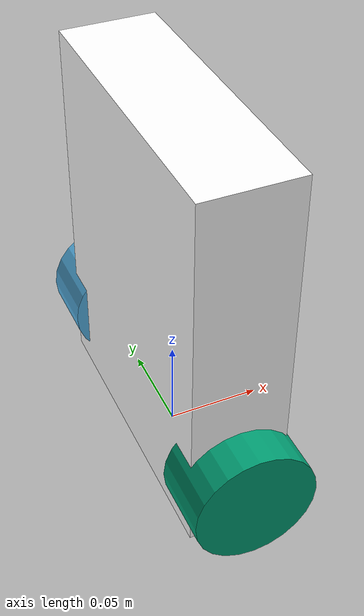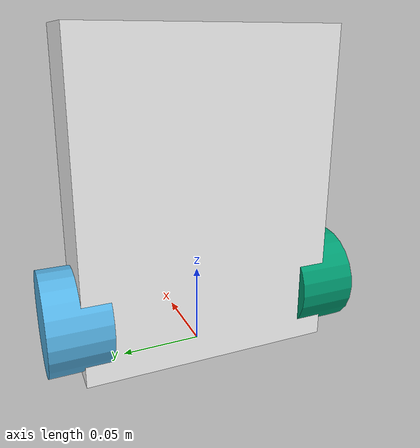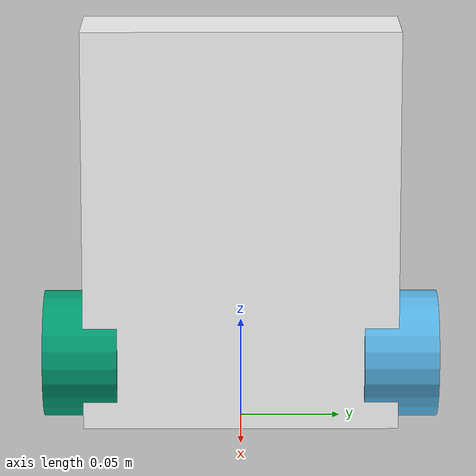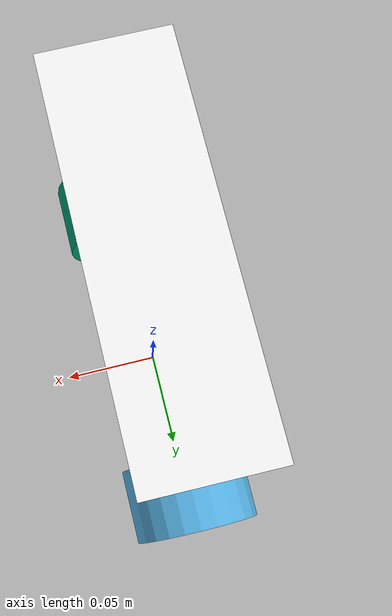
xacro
<?xml version = "1.0" ?>
<robot name = "wheeltec" xmlns:xacro ="http://ros.org/wiki/xacro" >
	<xacro:include filename="$(find turn_on_wheeltec_robot)/urdf/meshes/material.xacro" />

	<link name = "base_link">
		<visual>
			<geometry>
				<box size = "0.05 0.157 0.2"/>
			</geometry>
			<origin xyz ="0.00 0.0 0.1" rpy = "0 0 0" />
			<material name="white">
                <color rgba="1 1 1 1"/>
            </material>
		</visual>
	</link>

	<link name = "right_wheel_link">
		<inertial>
			<origin xyz = "0.0 0.0185 0" rpy = "0 0 0" />
			<mass value ="0.03770"/>
			<inertia ixx ="0.000096758" ixz = "0.0" iyy = "0.000068429" iyz = "0.0000" ixy = "0.0" izz = "0.000096758"/>
		</inertial>
		<collision>
			<geometry>
				<cylinder radius="0.0316" length ="0.037"/>
			</geometry>
			<origin rpy = "1.5708 0 0" xyz = "0 0.0150 0"/>

		</collision>
		<visual>
			<geometry>
				<cylinder radius="0.0316" length ="0.037"/>
			</geometry>

			<origin xyz="0 0 0" rpy="0 0 0" />
		</visual>
	</link>
	<joint name ="right_wheel_Joint" type = "continuous">
		<parent link = "base_link"/>
		<child link = "right_wheel_link"/>
		<origin xyz="0 0.08 0.0325" rpy="1.57 0 0"/>
		<limit effort="100000" velocity="100000"/>
        <axis xyz="0 1 0"/>
	</joint>
	<link name = "left_wheel_link">
		<inertial>
			<origin xyz = "0.0 0.0185 0" rpy = "0 0 0" />
			<mass value ="0.03770"/>
			<inertia ixx ="0.000096758" ixz = "0.0" iyy = "0.000068429" iyz = "0.0000" ixy = "0.0" izz = "0.000096758"/>
		</inertial>
		<collision>
			<geometry>
				<cylinder radius="0.0316" length ="0.037"/>
			</geometry>
			<origin rpy = "1.5708 0 0" xyz = "0 -0.015 0"/>
		</collision>
		<visual>
			<geometry>
				<cylinder radius="0.0316" length ="0.037"/>
			</geometry>

			<origin xyz="0 0 0" rpy="0 0 0" />

		</visual>
	</link>
	<joint name ="left_wheel_Joint" type = "continuous">
		<parent link = "base_link"/>
		<child link = "left_wheel_link"/>
		<origin xyz="0 -0.08 0.0325" rpy="1.57 0 0"/>
		<limit effort="100000" velocity="100000"/>
        <axis xyz="0 1 0"/>
	</joint>
	<!--fdfjdsf-->
</robot>
